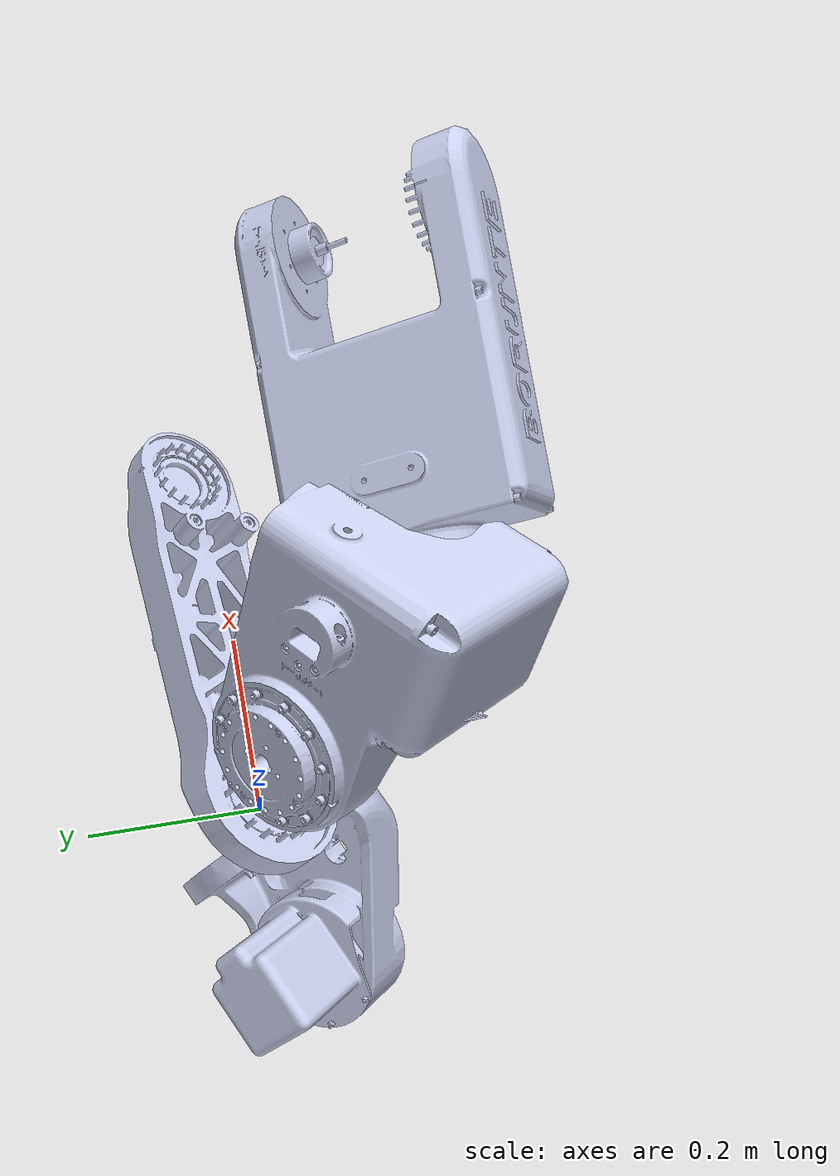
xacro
<?xml version="1.0"?>
<robot xmlns:xacro="http://www.ros.org/wiki/xacro" name="fouraxisrobot_kine">
    <xacro:arg name="initial_positions_file" default="initial_positions.yaml" />

    <!-- Import fouraxisrobot_kine urdf file -->
    <xacro:include filename="$(find cpp06_urdf)/urdf/urdf/fouraxisrobot_kine.urdf" />

    <!-- Import control_xacro -->
    <xacro:include filename="fouraxisrobot_kine.ros2_control.xacro" />

    <xacro:fouraxisrobot_kine_ros2_control name="FakeSystem" initial_positions_file="$(arg initial_positions_file)"/>

</robot>

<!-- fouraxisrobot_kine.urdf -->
<robot
  name="fouraxisrobot_kine">
  <link
    name="base_link">
    <inertial>
      <origin
        xyz="2.7802E-36 0.012867 1.1428E-18"
        rpy="0 0 0" />
      <mass
        value="0.23562" />
      <inertia
        ixx="0.00017569"
        ixy="6.7763E-21"
        ixz="2.7105E-20"
        iyy="0.00031802"
        iyz="5.9354E-21"
        izz="0.00017569" />
    </inertial>
    <visual>
      <origin
        xyz="0 0 0"
        rpy="0 0 0" />
      <geometry>
        <mesh
          filename="package://cpp06_urdf/meshes/base_link.STL" />
      </geometry>
      <material
        name="">
        <color
          rgba="0.79216 0.81961 0.93333 1" />
      </material>
    </visual>
    <collision>
      <origin
        xyz="0 0 0"
        rpy="0 0 0" />
      <geometry>
        <mesh
          filename="package://cpp06_urdf/meshes/base_link.STL" />
      </geometry>
    </collision>
  </link>
  <link
    name="link1">
    <inertial>
      <origin
        xyz="0.065125 2.0116E-17 -2.2224E-17"
        rpy="0 0 0" />
      <mass
        value="0.39015" />
      <inertia
        ixx="0.00027739"
        ixy="8.0815E-20"
        ixz="8.0388E-20"
        iyy="0.00072264"
        iyz="2.7105E-20"
        izz="0.00087866" />
    </inertial>
    <visual>
      <origin
        xyz="0 0 0"
        rpy="0 0 0" />
      <geometry>
        <mesh
          filename="package://cpp06_urdf/meshes/link1.STL" />
      </geometry>
      <material
        name="">
        <color
          rgba="0.79216 0.81961 0.93333 1" />
      </material>
    </visual>
    <collision>
      <origin
        xyz="0 0 0"
        rpy="0 0 0" />
      <geometry>
        <mesh
          filename="package://cpp06_urdf/meshes/link1.STL" />
      </geometry>
    </collision>
  </link>
  <joint
    name="joint1"
    type="revolute">
    <origin
      xyz="0 0 0.03"
      rpy="0.4441 -1.5708 0" />
    <parent
      link="base_link" />
    <child
      link="link1" />
    <axis
      xyz="-1 0 0" />
    <limit
      lower="-3.14"
      upper="3.14"
      effort="100"
      velocity="1" />
  </joint>
  <link
    name="link2">
    <inertial>
      <origin
        xyz="0.18014 6.6787E-17 -1.5727E-16"
        rpy="0 0 0" />
      <mass
        value="0.99282" />
      <inertia
        ixx="0.00060396"
        ixy="-6.6331E-18"
        ixz="-1.6839E-18"
        iyy="0.014885"
        iyz="8.6736E-19"
        izz="0.015332" />
    </inertial>
    <visual>
      <origin
        xyz="0 0 0"
        rpy="0 0 0" />
      <geometry>
        <mesh
          filename="package://cpp06_urdf/meshes/link2.STL" />
      </geometry>
      <material
        name="">
        <color
          rgba="0.79216 0.81961 0.93333 1" />
      </material>
    </visual>
    <collision>
      <origin
        xyz="0 0 0"
        rpy="0 0 0" />
      <geometry>
        <mesh
          filename="package://cpp06_urdf/meshes/link2.STL" />
      </geometry>
    </collision>
  </link>
  <joint
    name="joint2"
    type="revolute">
    <origin
      xyz="0.14 0 0"
      rpy="-3.1416 0 0.02851" />
    <parent
      link="link1" />
    <child
      link="link2" />
    <axis
      xyz="0 0 -1" />
    <limit
      lower="-3.14"
      upper="3.14"
      effort="100"
      velocity="1" />
  </joint>
  <link
    name="link3">
    <inertial>
      <origin
        xyz="0.0720662695405814 -1.11022302462516E-16 3.85108611666851E-16"
        rpy="0 0 0" />
      <mass
        value="0.312359863114213" />
      <inertia
        ixx="0.000175816316923738"
        ixy="6.4205097401876E-19"
        ixz="2.03287907341032E-19"
        iyy="0.00121702131601706"
        iyz="-2.03287907341032E-20"
        izz="0.0013696334055072" />
    </inertial>
    <visual>
      <origin
        xyz="0 0 0"
        rpy="0 0 0" />
      <geometry>
        <mesh
          filename="package://cpp06_urdf/meshes/link3.STL" />
      </geometry>
      <material
        name="">
        <color
          rgba="0.792156862745098 0.819607843137255 0.933333333333333 1" />
      </material>
    </visual>
    <collision>
      <origin
        xyz="0 0 0"
        rpy="0 0 0" />
      <geometry>
        <mesh
          filename="package://cpp06_urdf/meshes/link3.STL" />
      </geometry>
    </collision>
  </link>
  <joint
    name="joint3"
    type="revolute">
    <origin
      xyz="0.4 0 0"
      rpy="0 0 1.494" />
    <parent
      link="link2" />
    <child
      link="link3" />
    <axis
      xyz="0 0 -1" />
    <limit
      lower="-3.14"
      upper="3.14"
      effort="100"
      velocity="1" />
  </joint>
  <link
    name="link4">
    <inertial>
      <origin
        xyz="-0.165854197997763 0 2.77555756156289E-16"
        rpy="0 0 0" />
      <mass
        value="0.309991148575129" />
      <inertia
        ixx="0.000166157816246607"
        ixy="1.09097843606354E-18"
        ixz="-2.57498015965307E-18"
        iyy="0.00392704064985496"
        iyz="5.42101086242752E-20"
        izz="0.00408803194695865" />
    </inertial>
    <visual>
      <origin
        xyz="0 0 0"
        rpy="0 0 0" />
      <geometry>
        <mesh
          filename="package://cpp06_urdf/meshes/link4.STL" />
      </geometry>
      <material
        name="">
        <color
          rgba="0.792156862745098 0.819607843137255 0.933333333333333 1" />
      </material>
    </visual>
    <collision>
      <origin
        xyz="0 0 0"
        rpy="0 0 0" />
      <geometry>
        <mesh
          filename="package://cpp06_urdf/meshes/link4.STL" />
      </geometry>
    </collision>
  </link>
  <joint
    name="joint4"
    type="revolute">
    <origin
      xyz="0.17 0 0"
      rpy="0 0 -2.4139" />
    <parent
      link="link3" />
    <child
      link="link4" />
    <axis
      xyz="0 0 -1" />
    <limit
      lower="-3.14"
      upper="3.14"
      effort="100"
      velocity="1" />
  </joint>
</robot>
